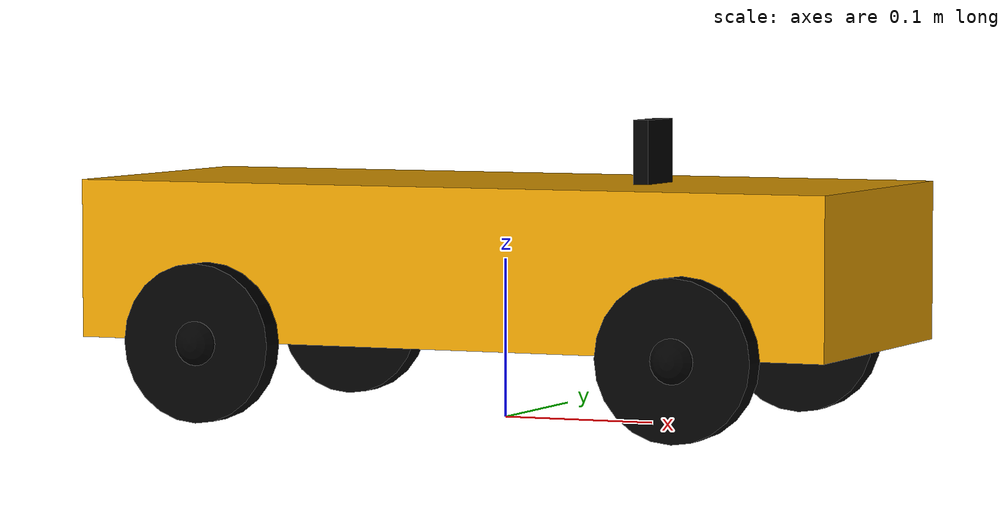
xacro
<?xml version="1.0"?>

<robot name="fw" xmlns:xacro="http://www.ros.org/wiki/xacro">

	<xacro:include filename="$(find mrobot_gazebo)/urdf/fw_body.xacro" />
	<xacro:include filename="$(find mrobot_gazebo)/urdf/camera.xacro" />

	<xacro:property name="camera_offset_x" value="0.1" />
	<xacro:property name="camera_offset_y" value="0" />
	<xacro:property name="camera_offset_z" value="0.17" />

	<!-- Body of mrobot, with plates, standoffs and Create (including sim sensors) -->
	<xacro:fw/>

	<!-- Attach the Kinect -->
	<joint name="camera_joint" type="fixed">
		<origin xyz="${camera_offset_x} ${camera_offset_y} ${camera_offset_z}" rpy="0 0 0" />
		<parent link="base_link"/>
		<child link="camera_link"/>
	</joint>

	<xacro:usb_camera prefix="camera"/>

</robot>

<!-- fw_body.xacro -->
<robot name="fw" xmlns:xacro="http://www.ros.org/wiki/xacro">

<xacro:macro name="fw">

    <link name="base_link">
        <visual>
            <geometry>
                  <box size="0.5 0.2 0.1" />
            </geometry>
            <origin xyz="0 0 0.1" rpy="0 0 0" />
        </visual>
        <collision>
            <origin xyz="0 0 0.1" rpy="0 0 0" />
            <geometry>
               <box size="0.5 0.2 0.1" />
            </geometry>
        </collision>
        <inertial>
            <origin xyz="0 0 0.1" rpy="0 0 0" />
            <mass value="100" />
            <inertia  ixx="1.0" ixy="0.0"  ixz="0.0"  iyy="1.0"  iyz="0.0"  izz="1.0" />
        </inertial>
    </link>
    <joint name="base_left_motor_joint" type="fixed">
        <origin xyz="-0.16 -0.11 0.05" rpy="0 0 0" />
        <parent link="base_link"/>
        <child link="left_f_motor"/>
    </joint>
    <link name="left_f_motor">
        <visual>
            <origin xyz="0 0 0" rpy="1.5707 0 0"/>
            <geometry>
                <sphere radius="0.0165" />
            </geometry>
            <material name="black">
                <color rgba="0 0 0 0.95"/>
            </material>
        </visual>
        <collision>
            <origin xyz="0 0 0" rpy="1.5707 0 0"/>
            <geometry>
                <sphere radius="0.0165" />
            </geometry>
        </collision>
        <inertial>
            <origin xyz="0 0 0" rpy="1.5707 0 0"/>
            <mass value="1" />
            <inertia  ixx="1.0" ixy="0.0"  ixz="0.0"  iyy="1.0"  iyz="0.0"  izz="1.0" />
        </inertial>
    </link>

    <joint name="base_right_motor_joint" type="fixed">
        <origin xyz="-0.16 0.11 0.05" rpy="0 0 0" />
        <parent link="base_link"/>
        <child link="right_f_motor"/>
    </joint>
    <link name="right_f_motor">
        <visual>
            <origin xyz="0 0 0" rpy="1.5707 0 0"/>
            <geometry>
                <sphere radius="0.0165" />
            </geometry>
            <material name="black">
                <color rgba="0 0 0 0.95"/>
            </material>
        </visual>
        <collision>
            <origin xyz="0 0 0" rpy="1.5707 0 0"/>
            <geometry>
                <sphere radius="0.0165" />
            </geometry>
        </collision>
        <inertial>
            <origin xyz="0 0 0" rpy="1.5707 0 0"/>
            <mass value="1" />
            <inertia  ixx="1.0" ixy="0.0"  ixz="0.0"  iyy="1.0"  iyz="0.0"  izz="1.0" />
        </inertial>
    </link>

    <joint name="base_right_b_motor_joint" type="fixed">
        <origin xyz="0.16 0.11 0.05" rpy="0 0 0" />
        <parent link="base_link"/>
        <child link="right_b_f_motor"/>
    </joint>
    <link name="right_b_f_motor">
        <visual>
            <origin xyz="0 0 0" rpy="1.5707 0 0"/>
            <geometry>
                <sphere radius="0.0165" />
            </geometry>
            <material name="black">
                <color rgba="0 0 0 0.95"/>
            </material>
        </visual>
        <collision>
            <origin xyz="0 0 0" rpy="1.5707 0 0"/>
            <geometry>
                <sphere radius="0.0165" />
            </geometry>
        </collision>
        <inertial>
            <origin xyz="0 0 0" rpy="1.5707 0 0"/>
            <mass value="1" />
            <inertia  ixx="1.0" ixy="0.0"  ixz="0.0"  iyy="1.0"  iyz="0.0"  izz="1.0" />
        </inertial>
    </link>

    <joint name="base_left_b_motor_joint" type="fixed">
        <origin xyz="0.16 -0.11 0.05" rpy="0 0 0" />
        <parent link="base_link"/>
        <child link="left_b_f_motor"/>
    </joint>
    <link name="left_b_f_motor">
        <visual>
            <origin xyz="0 0 0" rpy="1.5707 0 0"/>
            <geometry>
                <sphere radius="0.0165" />
            </geometry>
            <material name="black">
                <color rgba="0 0 0 0.95"/>
            </material>
        </visual>
        <collision>
            <origin xyz="0 0 0" rpy="1.5707 0 0"/>
            <geometry>
                <sphere radius="0.0165" />
            </geometry>
        </collision>
        <inertial>
            <origin xyz="0 0 0" rpy="1.5707 0 0"/>
            <mass value="1" />
            <inertia  ixx="1.0" ixy="0.0"  ixz="0.0"  iyy="1.0"  iyz="0.0"  izz="1.0" />
        </inertial>
    </link>

    <joint name="left_wheel_joint" type="continuous">
        <origin xyz="0 0 0" rpy="0 0 0"/>
        <parent link="left_f_motor"/>
        <child link="left_wheel_link"/>
        <axis xyz="0 1 0"/>
    </joint>
    <link name="left_wheel_link">
    <surface>
        <friction>
          <ode>
            <mu>0.7</mu>
            <mu2>0.7</mu2>
          </ode>
        </friction>
    </surface>
        <visual>
            <origin xyz="0 0 0" rpy="1.5707 0 0"/>
            <geometry>
                <cylinder radius="0.05" length = "0.017"/>
            </geometry>
            <material name="black">
                <color rgba="0 0 0 0.95"/>
            </material>
        </visual>
        <collision>
            <origin xyz="0 0 0" rpy="1.5707 0 0"/>
            <geometry>
                <cylinder radius="0.05" length = "0.017"/>
            </geometry>
        </collision>
        <inertial>
            <origin xyz="0 0 0" rpy="1.5707 0 0"/>
            <mass value="1" />
            <inertia  ixx="1.0" ixy="0.0"  ixz="0.0"  iyy="1.0"  iyz="0.0"  izz="1.0" />
        </inertial>
    </link>

    <joint name="right_wheel_joint" type="continuous">
        <origin xyz="0 0 0" rpy="0 0 0"/>
        <parent link="right_f_motor"/>
        <child link="right_wheel_link"/>
        <axis xyz="0 1 0"/>
    </joint>
    <link name="right_wheel_link">
    <surface>
        <friction>
          <ode>
            <mu>0.7</mu>
            <mu2>0.7</mu2>
          </ode>
        </friction>
    </surface>
        <visual>
            <origin xyz="0 0 0" rpy="1.5707 0 0"/>
            <geometry>
                <cylinder radius="0.05" length = "0.017"/>
            </geometry>
            <material name="black">
                <color rgba="0 0 0 0.95"/>
            </material>
        </visual>
        <collision>
            <origin xyz="0 0 0" rpy="1.5707 0 0"/>
            <geometry>
                <cylinder radius="0.05" length = "0.017"/>
            </geometry>
        </collision>
        <inertial>
            <origin xyz="0 0 0" rpy="1.5707 0 0"/>
            <mass value="1" />
            <inertia  ixx="1.0" ixy="0.0"  ixz="0.0"  iyy="1.0"  iyz="0.0"  izz="1.0" />
        </inertial>
    </link>

    <joint name="b_right_wheel_joint" type="continuous">
        <origin xyz="0 0 0 " rpy="0 0 0"/>
        <parent link="right_b_f_motor"/>
        <child link="b_right_wheel_link"/>
        <axis xyz="0 1 0"/>
    </joint>
    <link name="b_right_wheel_link">
    <surface>
        <friction>
          <ode>
            <mu>0.01</mu>
            <mu2>0.01</mu2>
          </ode>
        </friction>
    </surface>

        <visual>
            <origin xyz="0 0 0" rpy="1.5707 0 0"/>
            <geometry>
                <cylinder radius="0.05" length = "0.017"/>
            </geometry>
            <material name="black">
                <color rgba="0 0 0 0.95"/>
            </material>
        </visual>
        <collision>
            <origin xyz="0 0 0" rpy="1.5707 0 0"/>
            <geometry>
                <cylinder radius="0.05" length = "0.017"/>
            </geometry>
        </collision>
        <inertial>
            <origin xyz="0 0 0" rpy="1.5707 0 0"/>
            <mass value="1" />
            <inertia  ixx="1.0" ixy="0.0"  ixz="0.0"  iyy="1.0"  iyz="0.0"  izz="1.0" />
        </inertial>
    </link>

    <joint name="b_left_wheel_joint" type="continuous">
        <origin xyz="0 0 0" rpy="0 0 0"/>
        <parent link="left_b_f_motor"/>
        <child link="b_left_wheel_link"/>
        <axis xyz="0 1 0"/>
    </joint>
    <link name="b_left_wheel_link">
            <surface>
        <friction>
          <ode>
            <mu>0</mu>
            <mu2>0</mu2>
          </ode>
        </friction>
    </surface>
        <visual>
            <origin xyz="0 0 0" rpy="1.5707 0 0"/>
            <geometry>
                <cylinder radius="0.05" length = "0.017"/>
            </geometry>
            <material name="black">
                <color rgba="0 0 0 0.95"/>
            </material>
        </visual>
        <collision>
            <origin xyz="0 0 0" rpy="1.5707 0 0"/>
            <geometry>
                <cylinder radius="0.05" length = "0.017"/>
            </geometry>
        </collision>
        <inertial>
            <origin xyz="0 0 0" rpy="1.5707 0 0"/>
            <mass value="1" />
            <inertia  ixx="1.0" ixy="0.0"  ixz="0.0"  iyy="1.0"  iyz="0.0"  izz="1.0" />
        </inertial>
    </link>

    <transmission name="b_left_wheel_joint">
            <type>transmission_interface/SimpleTransmission</type>
            <joint name="b_left_wheel_joint" />
            <actuator name="left_b_f_motor">
                <hardwareInterface>VelocityJointInterface</hardwareInterface>
                <mechanicalReduction>1</mechanicalReduction>
            </actuator>
    </transmission>

    <transmission name="b_right_wheel_joint">
            <type>transmission_interface/SimpleTransmission</type>
            <joint name="b_right_wheel_joint" />
            <actuator name="right_b_f_motor">
                <hardwareInterface>VelocityJointInterface</hardwareInterface>
                <mechanicalReduction>1</mechanicalReduction>
            </actuator>
    </transmission>

    <transmission name="left_wheel_joint">
            <type>transmission_interface/SimpleTransmission</type>
            <joint name="left_wheel_joint" />
            <actuator name="left_f_motor">
                <hardwareInterface>VelocityJointInterface</hardwareInterface>
                <mechanicalReduction>1</mechanicalReduction>
            </actuator>
    </transmission>

    <transmission name="right_wheel_joint">
            <type>transmission_interface/SimpleTransmission</type>
            <joint name="right_wheel_joint" />
            <actuator name="right_f_motor">
                <hardwareInterface>VelocityJointInterface</hardwareInterface>
                <mechanicalReduction>1</mechanicalReduction>
            </actuator>
    </transmission>

          <!-- controller -->
        <gazebo>
            <plugin name="differential_drive_controller" filename="/opt/ros/noetic/lib/libgazebo_ros_diff_drive.so">
                <rosDebugLevel>Debug</rosDebugLevel>
                <publishWheelTF>false</publishWheelTF>
                <robotNamespace>/</robotNamespace>
                <publishOdomTF>1</publishOdomTF>
                <publishWheelJointState>false</publishWheelJointState>
                <alwaysOn>true</alwaysOn>
                <updateRate>1.0</updateRate>
                <legacyMode>true</legacyMode>
                <leftJoint>right_wheel_joint</leftJoint>
                <rightJoint>left_wheel_joint</rightJoint>

                <wheelDiameter>0.1</wheelDiameter>
                <broadcastTF>1</broadcastTF>
                <wheelTorque>30</wheelTorque>
                <wheelAcceleration>1.8</wheelAcceleration>
                <commandTopic>cmd_vel</commandTopic>
                <odometryFrame>odom</odometryFrame>
                <odometryTopic>odom</odometryTopic>
                <robotBaseFrame>base_footprint</robotBaseFrame>
                <odometrySource>world</odometrySource> <!-- 'encoder' instead of 'world' is also possible -->
                <publishTf>true</publishTf>
            </plugin>
        </gazebo>

</xacro:macro>
</robot>

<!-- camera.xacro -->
<robot xmlns:xacro="http://www.ros.org/wiki/xacro" name="camera">

    <xacro:macro name="usb_camera" params="prefix:=camera">
        <link name="${prefix}_link">
            <inertial>
                <mass value="0.1" />
                <origin xyz="0 0 0" />
                <inertia ixx="0.01" ixy="0.0" ixz="0.0"
                         iyy="0.01" iyz="0.0"
                         izz="0.01" />
            </inertial>

            <visual>
                <origin xyz=" 0 0 0 " rpy="0 0 0" />
                <geometry>
                    <box size="0.01 0.04 0.04" />
                </geometry>
                <material name="black"/>
            </visual>

            <collision>
                <origin xyz="0.0 0.0 0.0" rpy="0 0 0" />
                <geometry>
                    <box size="0.01 0.04 0.04" />
                </geometry>
            </collision>
        </link>
    </xacro:macro>

</robot>
